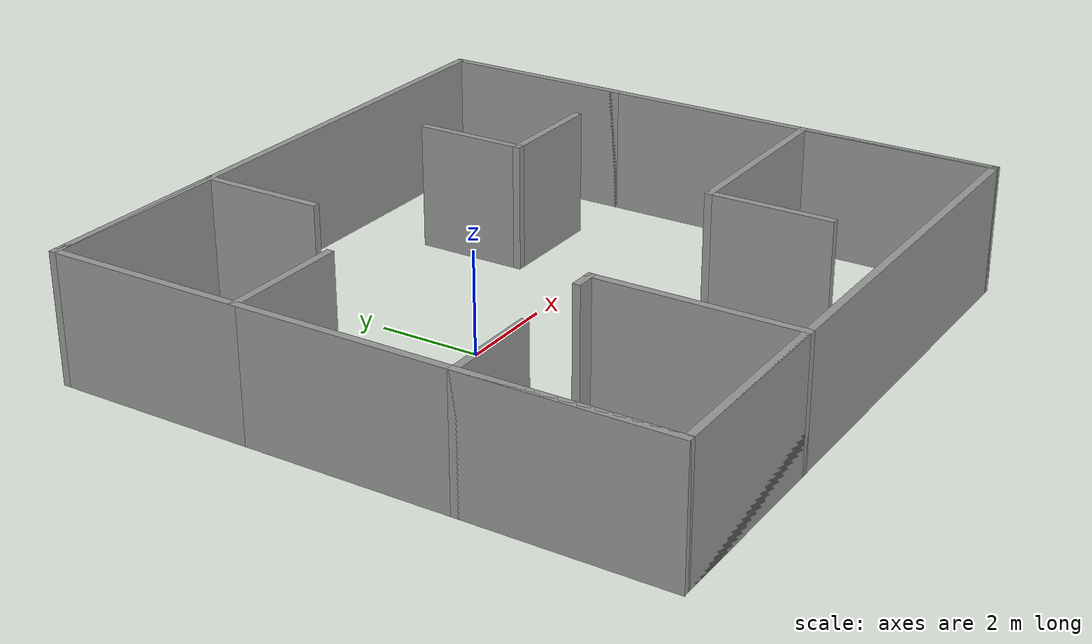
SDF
<?xml version='1.0'?>
<sdf version='1.6'>
  <model name='velma_experiments_lab'>
    <pose frame=''>1.33433 -0.6868 0 0 -0 0</pose>
    <link name='Wall_1'>
      <collision name='Wall_1_Collision'>
        <geometry>
          <box>
            <size>12 0.15 2.5</size>
          </box>
        </geometry>
        <pose frame=''>0 0 1.25 0 -0 0</pose>
      </collision>
      <visual name='Wall_1_Visual'>
        <pose frame=''>0 0 1.25 0 -0 0</pose>
        <geometry>
          <box>
            <size>12 0.15 2.5</size>
          </box>
        </geometry>
        <material>
          <script>
            <uri>file://media/materials/scripts/gazebo.material</uri>
            <name>Gazebo/Grey</name>
          </script>
          <ambient>1 1 1 1</ambient>
        </material>
        <meta>
          <layer>0</layer>
        </meta>
      </visual>
      <pose frame=''>0 -5.925 0 0 -0 0</pose>
    </link>
    <link name='Wall_10'>
      <collision name='Wall_10_Collision'>
        <geometry>
          <box>
            <size>4 0.15 2.5</size>
          </box>
        </geometry>
        <pose frame=''>0 0 1.25 0 -0 0</pose>
      </collision>
      <visual name='Wall_10_Visual'>
        <pose frame=''>0 0 1.25 0 -0 0</pose>
        <geometry>
          <box>
            <size>4 0.15 2.5</size>
          </box>
        </geometry>
        <material>
          <script>
            <uri>file://media/materials/scripts/gazebo.material</uri>
            <name>Gazebo/Grey</name>
          </script>
          <ambient>1 1 1 1</ambient>
        </material>
        <meta>
          <layer>0</layer>
        </meta>
      </visual>
      <pose frame=''>-5.925 4 0 0 -0 -1.5708</pose>
    </link>
    <link name='Wall_11'>
      <collision name='Wall_11_Collision'>
        <geometry>
          <box>
            <size>2.5 0.15 2.5</size>
          </box>
        </geometry>
        <pose frame=''>0 0 1.25 0 -0 0</pose>
      </collision>
      <visual name='Wall_11_Visual'>
        <pose frame=''>0 0 1.25 0 -0 0</pose>
        <geometry>
          <box>
            <size>2.5 0.15 2.5</size>
          </box>
        </geometry>
        <material>
          <script>
            <uri>file://media/materials/scripts/gazebo.material</uri>
            <name>Gazebo/Grey</name>
          </script>
          <ambient>1 1 1 1</ambient>
        </material>
        <meta>
          <layer>0</layer>
        </meta>
      </visual>
      <pose frame=''>-4.75 2.075 0 0 -0 0</pose>
    </link>
    <link name='Wall_13'>
      <collision name='Wall_13_Collision'>
        <geometry>
          <box>
            <size>4 0.15 2.5</size>
          </box>
        </geometry>
        <pose frame=''>0 0 1.25 0 -0 0</pose>
      </collision>
      <visual name='Wall_13_Visual'>
        <pose frame=''>0 0 1.25 0 -0 0</pose>
        <geometry>
          <box>
            <size>4 0.15 2.5</size>
          </box>
        </geometry>
        <material>
          <script>
            <uri>file://media/materials/scripts/gazebo.material</uri>
            <name>Gazebo/Grey</name>
          </script>
          <ambient>1 1 1 1</ambient>
        </material>
        <meta>
          <layer>0</layer>
        </meta>
      </visual>
      <pose frame=''>-5.925 -4 0 0 -0 1.5708</pose>
    </link>
    <link name='Wall_14'>
      <collision name='Wall_14_Collision'>
        <geometry>
          <box>
            <size>2 0.15 2.5</size>
          </box>
        </geometry>
        <pose frame=''>0 0 1.25 0 -0 0</pose>
      </collision>
      <visual name='Wall_14_Visual'>
        <pose frame=''>0 0 1.25 0 -0 0</pose>
        <geometry>
          <box>
            <size>2 0.15 2.5</size>
          </box>
        </geometry>
        <material>
          <script>
            <uri>file://media/materials/scripts/gazebo.material</uri>
            <name>Gazebo/Grey</name>
          </script>
          <ambient>1 1 1 1</ambient>
        </material>
        <meta>
          <layer>0</layer>
        </meta>
      </visual>
      <pose frame=''>-5 -2.075 0 0 -0 0</pose>
    </link>
    <link name='Wall_16'>
      <collision name='Wall_16_Collision'>
        <geometry>
          <box>
            <size>4 0.15 2.5</size>
          </box>
        </geometry>
        <pose frame=''>0 0 1.25 0 -0 0</pose>
      </collision>
      <visual name='Wall_16_Visual'>
        <pose frame=''>0 0 1.25 0 -0 0</pose>
        <geometry>
          <box>
            <size>4 0.15 2.5</size>
          </box>
        </geometry>
        <material>
          <script>
            <uri>file://media/materials/scripts/gazebo.material</uri>
            <name>Gazebo/Grey</name>
          </script>
          <ambient>1 1 1 1</ambient>
        </material>
        <meta>
          <layer>0</layer>
        </meta>
      </visual>
      <pose frame=''>-4 -5.925 0 0 -0 0</pose>
    </link>
    <link name='Wall_17'>
      <collision name='Wall_17_Collision'>
        <geometry>
          <box>
            <size>4 0.15 2.5</size>
          </box>
        </geometry>
        <pose frame=''>0 0 1.25 0 -0 0</pose>
      </collision>
      <visual name='Wall_17_Visual'>
        <pose frame=''>0 0 1.25 0 -0 0</pose>
        <geometry>
          <box>
            <size>4 0.15 2.5</size>
          </box>
        </geometry>
        <material>
          <script>
            <uri>file://media/materials/scripts/gazebo.material</uri>
            <name>Gazebo/Grey</name>
          </script>
          <ambient>1 1 1 1</ambient>
        </material>
        <meta>
          <layer>0</layer>
        </meta>
      </visual>
      <pose frame=''>-2.075 -4 0 0 -0 1.5708</pose>
    </link>
    <link name='Wall_18'>
      <collision name='Wall_18_Collision'>
        <geometry>
          <box>
            <size>0.5 0.15 2.5</size>
          </box>
        </geometry>
        <pose frame=''>0 0 1.25 0 -0 0</pose>
      </collision>
      <visual name='Wall_18_Visual'>
        <pose frame=''>0 0 1.25 0 -0 0</pose>
        <geometry>
          <box>
            <size>0.5 0.15 2.5</size>
          </box>
        </geometry>
        <material>
          <script>
            <uri>file://media/materials/scripts/gazebo.material</uri>
            <name>Gazebo/Grey</name>
          </script>
          <ambient>1 1 1 1</ambient>
        </material>
        <meta>
          <layer>0</layer>
        </meta>
      </visual>
      <pose frame=''>-2.25 -2.075 0 0 -0 3.14159</pose>
    </link>
    <link name='Wall_20'>
      <collision name='Wall_20_Collision'>
        <geometry>
          <box>
            <size>4 0.15 2.5</size>
          </box>
        </geometry>
        <pose frame=''>0 0 1.25 0 -0 0</pose>
      </collision>
      <visual name='Wall_20_Visual'>
        <pose frame=''>0 0 1.25 0 -0 0</pose>
        <geometry>
          <box>
            <size>4 0.15 2.5</size>
          </box>
        </geometry>
        <material>
          <script>
            <uri>file://media/materials/scripts/gazebo.material</uri>
            <name>Gazebo/Grey</name>
          </script>
          <ambient>1 1 1 1</ambient>
        </material>
        <meta>
          <layer>0</layer>
        </meta>
      </visual>
      <pose frame=''>5.925 -4 0 0 -0 1.5708</pose>
    </link>
    <link name='Wall_21'>
      <collision name='Wall_21_Collision'>
        <geometry>
          <box>
            <size>4 0.15 2.5</size>
          </box>
        </geometry>
        <pose frame=''>0 0 1.25 0 -0 0</pose>
      </collision>
      <visual name='Wall_21_Visual'>
        <pose frame=''>0 0 1.25 0 -0 0</pose>
        <geometry>
          <box>
            <size>4 0.15 2.5</size>
          </box>
        </geometry>
        <material>
          <script>
            <uri>file://media/materials/scripts/gazebo.material</uri>
            <name>Gazebo/Grey</name>
          </script>
          <ambient>1 1 1 1</ambient>
        </material>
        <meta>
          <layer>0</layer>
        </meta>
      </visual>
      <pose frame=''>4 -2.075 0 0 -0 3.14159</pose>
    </link>
    <link name='Wall_22'>
      <collision name='Wall_22_Collision'>
        <geometry>
          <box>
            <size>2.5 0.15 2.5</size>
          </box>
        </geometry>
        <pose frame=''>0 0 1.25 0 -0 0</pose>
      </collision>
      <visual name='Wall_22_Visual'>
        <pose frame=''>0 0 1.25 0 -0 0</pose>
        <geometry>
          <box>
            <size>2.5 0.15 2.5</size>
          </box>
        </geometry>
        <material>
          <script>
            <uri>file://media/materials/scripts/gazebo.material</uri>
            <name>Gazebo/Grey</name>
          </script>
          <ambient>1 1 1 1</ambient>
        </material>
        <meta>
          <layer>0</layer>
        </meta>
      </visual>
      <pose frame=''>2.075 -3.25 0 0 -0 -1.5708</pose>
    </link>
    <link name='Wall_24'>
      <collision name='Wall_24_Collision'>
        <geometry>
          <box>
            <size>4 0.15 2.5</size>
          </box>
        </geometry>
        <pose frame=''>0 0 1.25 0 -0 0</pose>
      </collision>
      <visual name='Wall_24_Visual'>
        <pose frame=''>0 0 1.25 0 -0 0</pose>
        <geometry>
          <box>
            <size>4 0.15 2.5</size>
          </box>
        </geometry>
        <material>
          <script>
            <uri>file://media/materials/scripts/gazebo.material</uri>
            <name>Gazebo/Grey</name>
          </script>
          <ambient>1 1 1 1</ambient>
        </material>
        <meta>
          <layer>0</layer>
        </meta>
      </visual>
      <pose frame=''>5.925 4 0 0 -0 -1.5708</pose>
    </link>
    <link name='Wall_26'>
      <collision name='Wall_26_Collision'>
        <geometry>
          <box>
            <size>2.25 0.15 2.5</size>
          </box>
        </geometry>
        <pose frame=''>0 0 1.25 0 -0 0</pose>
      </collision>
      <visual name='Wall_26_Visual'>
        <pose frame=''>0 0 1.25 0 -0 0</pose>
        <geometry>
          <box>
            <size>2.25 0.15 2.5</size>
          </box>
        </geometry>
        <material>
          <script>
            <uri>file://media/materials/scripts/gazebo.material</uri>
            <name>Gazebo/Grey</name>
          </script>
          <ambient>1 1 1 1</ambient>
        </material>
        <meta>
          <layer>0</layer>
        </meta>
      </visual>
      <pose frame=''>3.275 2.075 0 0 -0 3.14159</pose>
    </link>
    <link name='Wall_27'>
      <collision name='Wall_27_Collision'>
        <geometry>
          <box>
            <size>2.25 0.15 2.5</size>
          </box>
        </geometry>
        <pose frame=''>0 0 1.25 0 -0 0</pose>
      </collision>
      <visual name='Wall_27_Visual'>
        <pose frame=''>0 0 1.25 0 -0 0</pose>
        <geometry>
          <box>
            <size>2.25 0.15 2.5</size>
          </box>
        </geometry>
        <material>
          <script>
            <uri>file://media/materials/scripts/gazebo.material</uri>
            <name>Gazebo/Grey</name>
          </script>
          <ambient>1 1 1 1</ambient>
        </material>
        <meta>
          <layer>0</layer>
        </meta>
      </visual>
      <pose frame=''>2.225 3.125 0 0 -0 1.5708</pose>
    </link>
    <link name='Wall_3'>
      <collision name='Wall_3_Collision'>
        <geometry>
          <box>
            <size>12 0.15 2.5</size>
          </box>
        </geometry>
        <pose frame=''>0 0 1.25 0 -0 0</pose>
      </collision>
      <visual name='Wall_3_Visual'>
        <pose frame=''>0 0 1.25 0 -0 0</pose>
        <geometry>
          <box>
            <size>12 0.15 2.5</size>
          </box>
        </geometry>
        <material>
          <script>
            <uri>file://media/materials/scripts/gazebo.material</uri>
            <name>Gazebo/Grey</name>
          </script>
          <ambient>1 1 1 1</ambient>
        </material>
        <meta>
          <layer>0</layer>
        </meta>
      </visual>
      <pose frame=''>5.925 -0 0 0 -0 1.5708</pose>
    </link>
    <link name='Wall_4'>
      <collision name='Wall_4_Collision'>
        <geometry>
          <box>
            <size>12 0.15 2.5</size>
          </box>
        </geometry>
        <pose frame=''>0 0 1.25 0 -0 0</pose>
      </collision>
      <visual name='Wall_4_Visual'>
        <pose frame=''>0 0 1.25 0 -0 0</pose>
        <geometry>
          <box>
            <size>12 0.15 2.5</size>
          </box>
        </geometry>
        <material>
          <script>
            <uri>file://media/materials/scripts/gazebo.material</uri>
            <name>Gazebo/Grey</name>
          </script>
          <ambient>1 1 1 1</ambient>
        </material>
        <meta>
          <layer>0</layer>
        </meta>
      </visual>
      <pose frame=''>0 5.925 0 0 -0 3.14159</pose>
    </link>
    <link name='Wall_5'>
      <collision name='Wall_5_Collision'>
        <geometry>
          <box>
            <size>12 0.15 2.5</size>
          </box>
        </geometry>
        <pose frame=''>0 0 1.25 0 -0 0</pose>
      </collision>
      <visual name='Wall_5_Visual'>
        <pose frame=''>0 0 1.25 0 -0 0</pose>
        <geometry>
          <box>
            <size>12 0.15 2.5</size>
          </box>
        </geometry>
        <material>
          <script>
            <uri>file://media/materials/scripts/gazebo.material</uri>
            <name>Gazebo/Grey</name>
          </script>
          <ambient>1 1 1 1</ambient>
        </material>
        <meta>
          <layer>0</layer>
        </meta>
      </visual>
      <pose frame=''>-5.925 -0 0 0 -0 -1.5708</pose>
    </link>
    <link name='Wall_7'>
      <collision name='Wall_7_Collision'>
        <geometry>
          <box>
            <size>4 0.15 2.5</size>
          </box>
        </geometry>
        <pose frame=''>0 0 1.25 0 -0 0</pose>
      </collision>
      <visual name='Wall_7_Visual'>
        <pose frame=''>0 0 1.25 0 -0 0</pose>
        <geometry>
          <box>
            <size>4 0.15 2.5</size>
          </box>
        </geometry>
        <material>
          <script>
            <uri>file://media/materials/scripts/gazebo.material</uri>
            <name>Gazebo/Grey</name>
          </script>
          <ambient>1 1 1 1</ambient>
        </material>
        <meta>
          <layer>0</layer>
        </meta>
      </visual>
      <pose frame=''>-4 5.925 0 0 -0 0</pose>
    </link>
    <link name='Wall_8'>
      <collision name='Wall_8_Collision'>
        <geometry>
          <box>
            <size>2.5 0.15 2.5</size>
          </box>
        </geometry>
        <pose frame=''>0 0 1.25 0 -0 0</pose>
      </collision>
      <visual name='Wall_8_Visual'>
        <pose frame=''>0 0 1.25 0 -0 0</pose>
        <geometry>
          <box>
            <size>2.5 0.15 2.5</size>
          </box>
        </geometry>
        <material>
          <script>
            <uri>file://media/materials/scripts/gazebo.material</uri>
            <name>Gazebo/Grey</name>
          </script>
          <ambient>1 1 1 1</ambient>
        </material>
        <meta>
          <layer>0</layer>
        </meta>
      </visual>
      <pose frame=''>-2.075 4.75 0 0 -0 -1.5708</pose>
    </link>
    <static>1</static>
  </model>
</sdf>
